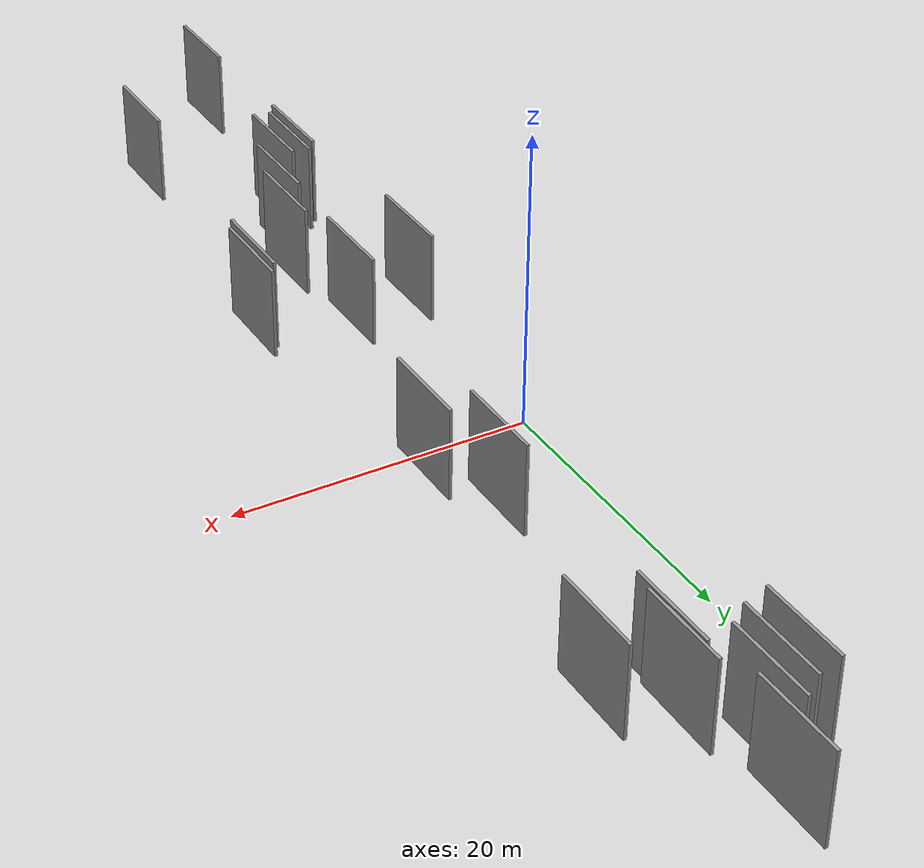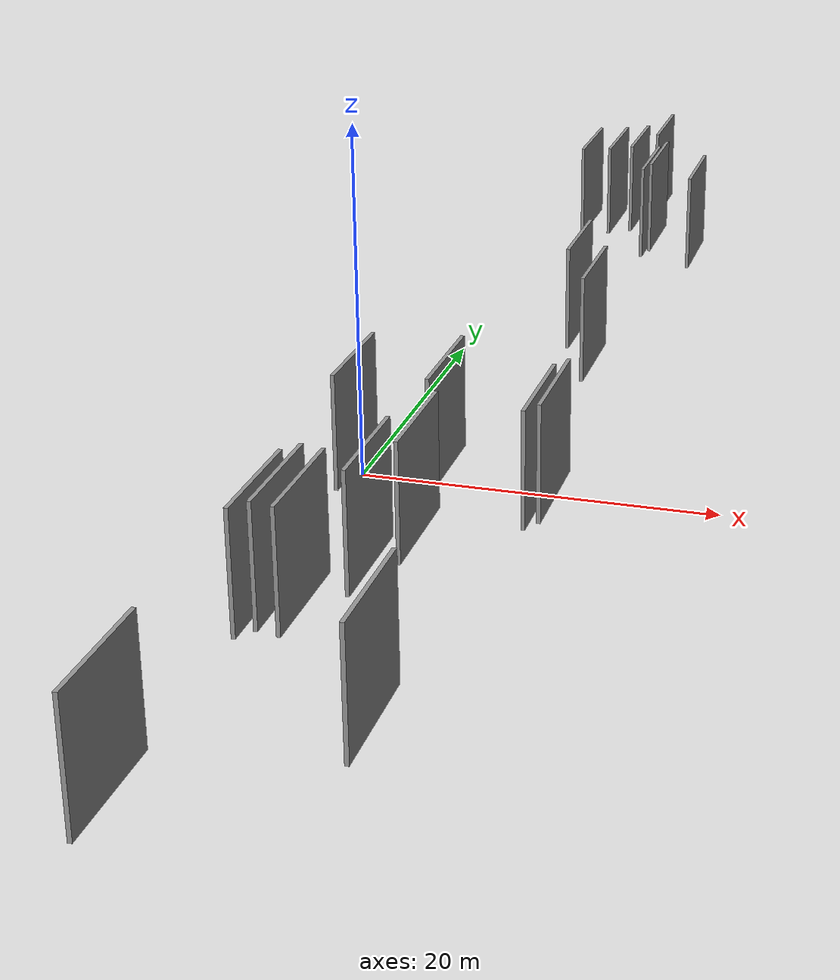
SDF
<sdf version="1.6">
 <world name="default">
  <scene>
   <sky><clouds><speed>12</speed></clouds></sky>
   <ambient>0.4 0.4 0.4 1</ambient>
   <background>0.7 0.7 0.7 1</background>
   <shadows>1</shadows>
  </scene>
  <gravity>0 0 -9.8066</gravity>
  <magnetic_field>6e-06 2.3e-05 -4.2e-05</magnetic_field>
  <physics default="0" name="default_physics" type="ode">
   <ode>
    <solver>
     <type>quick</type>
     <iters>10</iters>
     <sor>1.0</sor>
     <use_dynamic_moi_rescaling>0</use_dynamic_moi_rescaling>
    </solver>
    <constraints>
     <cfm>0</cfm>
     <erp>0.2</erp>
     <contact_max_correcting_vel>100</contact_max_correcting_vel>
     <contact_surface_layer>0.001</contact_surface_layer>
    </constraints>
   </ode>
   <max_step_size>0.004</max_step_size>
   <real_time_factor>1</real_time_factor>
   <real_time_update_rate>250</real_time_update_rate>
  </physics>
  <light name="sun" type="directional">
   <pose>0 0 10 0 0 0</pose>
   <diffuse>0.8 0.8 0.8 1</diffuse>
   <specular>0.2 0.2 0.2 1</specular>
   <attenuation>
    <range>1000</range>
    <constant>0.9</constant>
    <linear>0.01</linear>
    <quadratic>0.001</quadratic>
   </attenuation>
   <direction>-0.5 0.1 -0.9</direction>
  </light>
  <model name="grey_wall_1">
   <static>1</static>
   <pose>13.3435 -10.2346 5.0 0.000000 0.000000 1.570796</pose>
   <link name="link">
    <pose>0 0 3.00 0 0 0</pose>
    <collision name="collision"><geometry><box><size>6.00 0.2 6.00</size></box></geometry></collision>
    <visual name="visual">
     <cast_shadows>0</cast_shadows>
     <geometry><box><size>6.00 0.2 6.00</size></box></geometry>
     <material>
      <script>
       <uri>model://grey_wall/materials/scripts</uri>
       <uri>model://grey_wall/materials/textures</uri>
       <name>vrc/grey_wall</name>
      </script>
     </material>
    </visual>
   </link>
  </model>
  <model name="grey_wall_2">
   <static>1</static>
   <pose>8.3272 -15.8261 5.0 0.000000 0.000000 1.570796</pose>
   <link name="link">
    <pose>0 0 3.00 0 0 0</pose>
    <collision name="collision"><geometry><box><size>6.00 0.2 6.00</size></box></geometry></collision>
    <visual name="visual">
     <cast_shadows>0</cast_shadows>
     <geometry><box><size>6.00 0.2 6.00</size></box></geometry>
     <material>
      <script>
       <uri>model://grey_wall/materials/scripts</uri>
       <uri>model://grey_wall/materials/textures</uri>
       <name>vrc/grey_wall</name>
      </script>
     </material>
    </visual>
   </link>
  </model>
  <model name="grey_wall_3">
   <static>1</static>
   <pose>7.1234 -19.2149 5.0 0.000000 0.000000 1.570796</pose>
   <link name="link">
    <pose>0 0 3.00 0 0 0</pose>
    <collision name="collision"><geometry><box><size>6.00 0.2 6.00</size></box></geometry></collision>
    <visual name="visual">
     <cast_shadows>0</cast_shadows>
     <geometry><box><size>6.00 0.2 6.00</size></box></geometry>
     <material>
      <script>
       <uri>model://grey_wall/materials/scripts</uri>
       <uri>model://grey_wall/materials/textures</uri>
       <name>vrc/grey_wall</name>
      </script>
     </material>
    </visual>
   </link>
  </model>
  <model name="grey_wall_4">
   <static>1</static>
   <pose>9.4887 39.0282 5.0 0.000000 0.000000 1.570796</pose>
   <link name="link">
    <pose>0 0 3.00 0 0 0</pose>
    <collision name="collision"><geometry><box><size>6.00 0.2 6.00</size></box></geometry></collision>
    <visual name="visual">
     <cast_shadows>0</cast_shadows>
     <geometry><box><size>6.00 0.2 6.00</size></box></geometry>
     <material>
      <script>
       <uri>model://grey_wall/materials/scripts</uri>
       <uri>model://grey_wall/materials/textures</uri>
       <name>vrc/grey_wall</name>
      </script>
     </material>
    </visual>
   </link>
  </model>
  <model name="grey_wall_5">
   <static>1</static>
   <pose>8.3911 35.4587 5.0 0.000000 0.000000 1.570796</pose>
   <link name="link">
    <pose>0 0 3.00 0 0 0</pose>
    <collision name="collision"><geometry><box><size>6.00 0.2 6.00</size></box></geometry></collision>
    <visual name="visual">
     <cast_shadows>0</cast_shadows>
     <geometry><box><size>6.00 0.2 6.00</size></box></geometry>
     <material>
      <script>
       <uri>model://grey_wall/materials/scripts</uri>
       <uri>model://grey_wall/materials/textures</uri>
       <name>vrc/grey_wall</name>
      </script>
     </material>
    </visual>
   </link>
  </model>
  <model name="grey_wall_6">
   <static>1</static>
   <pose>5.3380 34.0003 5.0 0.000000 0.000000 1.570796</pose>
   <link name="link">
    <pose>0 0 3.00 0 0 0</pose>
    <collision name="collision"><geometry><box><size>6.00 0.2 6.00</size></box></geometry></collision>
    <visual name="visual">
     <cast_shadows>0</cast_shadows>
     <geometry><box><size>6.00 0.2 6.00</size></box></geometry>
     <material>
      <script>
       <uri>model://grey_wall/materials/scripts</uri>
       <uri>model://grey_wall/materials/textures</uri>
       <name>vrc/grey_wall</name>
      </script>
     </material>
    </visual>
   </link>
  </model>
  <model name="grey_wall_7">
   <static>1</static>
   <pose>13.5607 28.5280 5.0 0.000000 0.000000 1.570796</pose>
   <link name="link">
    <pose>0 0 3.00 0 0 0</pose>
    <collision name="collision"><geometry><box><size>6.00 0.2 6.00</size></box></geometry></collision>
    <visual name="visual">
     <cast_shadows>0</cast_shadows>
     <geometry><box><size>6.00 0.2 6.00</size></box></geometry>
     <material>
      <script>
       <uri>model://grey_wall/materials/scripts</uri>
       <uri>model://grey_wall/materials/textures</uri>
       <name>vrc/grey_wall</name>
      </script>
     </material>
    </visual>
   </link>
  </model>
  <model name="grey_wall_8">
   <static>1</static>
   <pose>11.4334 -31.4107 5.0 0.000000 0.000000 1.570796</pose>
   <link name="link">
    <pose>0 0 3.00 0 0 0</pose>
    <collision name="collision"><geometry><box><size>6.00 0.2 6.00</size></box></geometry></collision>
    <visual name="visual">
     <cast_shadows>0</cast_shadows>
     <geometry><box><size>6.00 0.2 6.00</size></box></geometry>
     <material>
      <script>
       <uri>model://grey_wall/materials/scripts</uri>
       <uri>model://grey_wall/materials/textures</uri>
       <name>vrc/grey_wall</name>
      </script>
     </material>
    </visual>
   </link>
  </model>
  <model name="grey_wall_9">
   <static>1</static>
   <pose>9.3766 12.3672 5.0 0.000000 0.000000 1.570796</pose>
   <link name="link">
    <pose>0 0 3.00 0 0 0</pose>
    <collision name="collision"><geometry><box><size>6.00 0.2 6.00</size></box></geometry></collision>
    <visual name="visual">
     <cast_shadows>0</cast_shadows>
     <geometry><box><size>6.00 0.2 6.00</size></box></geometry>
     <material>
      <script>
       <uri>model://grey_wall/materials/scripts</uri>
       <uri>model://grey_wall/materials/textures</uri>
       <name>vrc/grey_wall</name>
      </script>
     </material>
    </visual>
   </link>
  </model>
  <model name="grey_wall_10">
   <static>1</static>
   <pose>3.8055 -38.2990 5.0 0.000000 0.000000 1.570796</pose>
   <link name="link">
    <pose>0 0 3.00 0 0 0</pose>
    <collision name="collision"><geometry><box><size>6.00 0.2 6.00</size></box></geometry></collision>
    <visual name="visual">
     <cast_shadows>0</cast_shadows>
     <geometry><box><size>6.00 0.2 6.00</size></box></geometry>
     <material>
      <script>
       <uri>model://grey_wall/materials/scripts</uri>
       <uri>model://grey_wall/materials/textures</uri>
       <name>vrc/grey_wall</name>
      </script>
     </material>
    </visual>
   </link>
  </model>
  <model name="grey_wall_11">
   <static>1</static>
   <pose>7.0572 34.5183 5.0 0.000000 0.000000 1.570796</pose>
   <link name="link">
    <pose>0 0 3.00 0 0 0</pose>
    <collision name="collision"><geometry><box><size>6.00 0.2 6.00</size></box></geometry></collision>
    <visual name="visual">
     <cast_shadows>0</cast_shadows>
     <geometry><box><size>6.00 0.2 6.00</size></box></geometry>
     <material>
      <script>
       <uri>model://grey_wall/materials/scripts</uri>
       <uri>model://grey_wall/materials/textures</uri>
       <name>vrc/grey_wall</name>
      </script>
     </material>
    </visual>
   </link>
  </model>
  <model name="grey_wall_12">
   <static>1</static>
   <pose>10.1963 30.0239 5.0 0.000000 0.000000 1.570796</pose>
   <link name="link">
    <pose>0 0 3.00 0 0 0</pose>
    <collision name="collision"><geometry><box><size>6.00 0.2 6.00</size></box></geometry></collision>
    <visual name="visual">
     <cast_shadows>0</cast_shadows>
     <geometry><box><size>6.00 0.2 6.00</size></box></geometry>
     <material>
      <script>
       <uri>model://grey_wall/materials/scripts</uri>
       <uri>model://grey_wall/materials/textures</uri>
       <name>vrc/grey_wall</name>
      </script>
     </material>
    </visual>
   </link>
  </model>
  <model name="grey_wall_13">
   <static>1</static>
   <pose>10.4868 31.4082 5.0 0.000000 0.000000 1.570796</pose>
   <link name="link">
    <pose>0 0 3.00 0 0 0</pose>
    <collision name="collision"><geometry><box><size>6.00 0.2 6.00</size></box></geometry></collision>
    <visual name="visual">
     <cast_shadows>0</cast_shadows>
     <geometry><box><size>6.00 0.2 6.00</size></box></geometry>
     <material>
      <script>
       <uri>model://grey_wall/materials/scripts</uri>
       <uri>model://grey_wall/materials/textures</uri>
       <name>vrc/grey_wall</name>
      </script>
     </material>
    </visual>
   </link>
  </model>
  <model name="grey_wall_14">
   <static>1</static>
   <pose>4.4387 -23.0363 5.0 0.000000 0.000000 1.570796</pose>
   <link name="link">
    <pose>0 0 3.00 0 0 0</pose>
    <collision name="collision"><geometry><box><size>6.00 0.2 6.00</size></box></geometry></collision>
    <visual name="visual">
     <cast_shadows>0</cast_shadows>
     <geometry><box><size>6.00 0.2 6.00</size></box></geometry>
     <material>
      <script>
       <uri>model://grey_wall/materials/scripts</uri>
       <uri>model://grey_wall/materials/textures</uri>
       <name>vrc/grey_wall</name>
      </script>
     </material>
    </visual>
   </link>
  </model>
  <model name="grey_wall_15">
   <static>1</static>
   <pose>12.8225 -11.0919 5.0 0.000000 0.000000 1.570796</pose>
   <link name="link">
    <pose>0 0 3.00 0 0 0</pose>
    <collision name="collision"><geometry><box><size>6.00 0.2 6.00</size></box></geometry></collision>
    <visual name="visual">
     <cast_shadows>0</cast_shadows>
     <geometry><box><size>6.00 0.2 6.00</size></box></geometry>
     <material>
      <script>
       <uri>model://grey_wall/materials/scripts</uri>
       <uri>model://grey_wall/materials/textures</uri>
       <name>vrc/grey_wall</name>
      </script>
     </material>
    </visual>
   </link>
  </model>
  <model name="grey_wall_16">
   <static>1</static>
   <pose>3.0195 -9.2553 5.0 0.000000 0.000000 1.570796</pose>
   <link name="link">
    <pose>0 0 3.00 0 0 0</pose>
    <collision name="collision"><geometry><box><size>6.00 0.2 6.00</size></box></geometry></collision>
    <visual name="visual">
     <cast_shadows>0</cast_shadows>
     <geometry><box><size>6.00 0.2 6.00</size></box></geometry>
     <material>
      <script>
       <uri>model://grey_wall/materials/scripts</uri>
       <uri>model://grey_wall/materials/textures</uri>
       <name>vrc/grey_wall</name>
      </script>
     </material>
    </visual>
   </link>
  </model>
  <model name="grey_wall_17">
   <static>1</static>
   <pose>7.4820 -8.5324 5.0 0.000000 0.000000 1.570796</pose>
   <link name="link">
    <pose>0 0 3.00 0 0 0</pose>
    <collision name="collision"><geometry><box><size>6.00 0.2 6.00</size></box></geometry></collision>
    <visual name="visual">
     <cast_shadows>0</cast_shadows>
     <geometry><box><size>6.00 0.2 6.00</size></box></geometry>
     <material>
      <script>
       <uri>model://grey_wall/materials/scripts</uri>
       <uri>model://grey_wall/materials/textures</uri>
       <name>vrc/grey_wall</name>
      </script>
     </material>
    </visual>
   </link>
  </model>
  <model name="grey_wall_18">
   <static>1</static>
   <pose>5.5375 -23.2499 5.0 0.000000 0.000000 1.570796</pose>
   <link name="link">
    <pose>0 0 3.00 0 0 0</pose>
    <collision name="collision"><geometry><box><size>6.00 0.2 6.00</size></box></geometry></collision>
    <visual name="visual">
     <cast_shadows>0</cast_shadows>
     <geometry><box><size>6.00 0.2 6.00</size></box></geometry>
     <material>
      <script>
       <uri>model://grey_wall/materials/scripts</uri>
       <uri>model://grey_wall/materials/textures</uri>
       <name>vrc/grey_wall</name>
      </script>
     </material>
    </visual>
   </link>
  </model>
  <model name="grey_wall_19">
   <static>1</static>
   <pose>11.3121 7.5573 5.0 0.000000 0.000000 1.570796</pose>
   <link name="link">
    <pose>0 0 3.00 0 0 0</pose>
    <collision name="collision"><geometry><box><size>6.00 0.2 6.00</size></box></geometry></collision>
    <visual name="visual">
     <cast_shadows>0</cast_shadows>
     <geometry><box><size>6.00 0.2 6.00</size></box></geometry>
     <material>
      <script>
       <uri>model://grey_wall/materials/scripts</uri>
       <uri>model://grey_wall/materials/textures</uri>
       <name>vrc/grey_wall</name>
      </script>
     </material>
    </visual>
   </link>
  </model>
  <model name="grey_wall_20">
   <static>1</static>
   <pose>3.7870 -23.8621 5.0 0.000000 0.000000 1.570796</pose>
   <link name="link">
    <pose>0 0 3.00 0 0 0</pose>
    <collision name="collision"><geometry><box><size>6.00 0.2 6.00</size></box></geometry></collision>
    <visual name="visual">
     <cast_shadows>0</cast_shadows>
     <geometry><box><size>6.00 0.2 6.00</size></box></geometry>
     <material>
      <script>
       <uri>model://grey_wall/materials/scripts</uri>
       <uri>model://grey_wall/materials/textures</uri>
       <name>vrc/grey_wall</name>
      </script>
     </material>
    </visual>
   </link>
  </model>
 </world>
</sdf>
